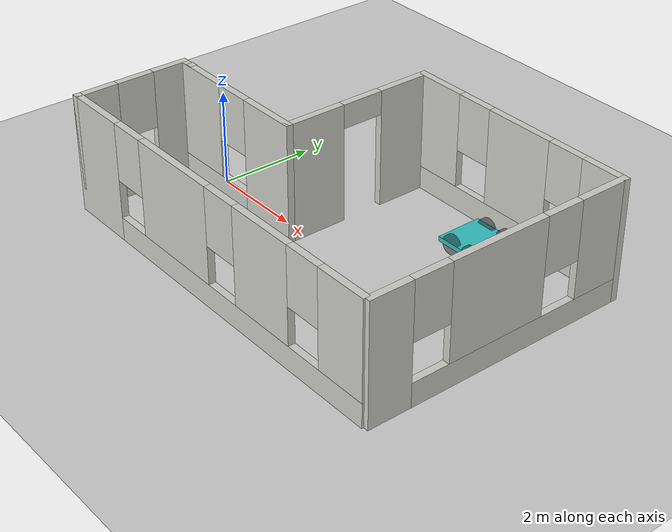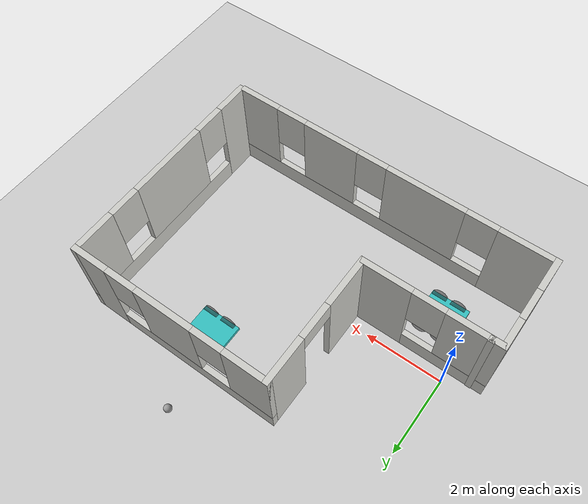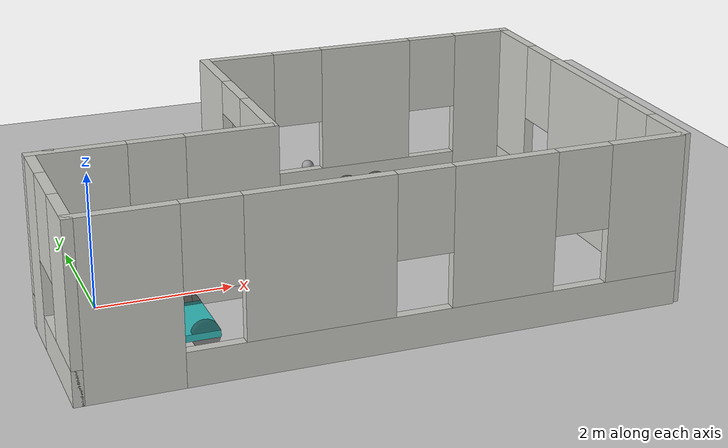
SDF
<sdf version="1.6">
 <world name="default">
  <plugin name="welcome" filename="libwelcome.so"/>
  <light name="sun" type="directional">
   <pose>0 0 10 0 -0 0</pose>
   <diffuse>0.8 0.8 0.8 1</diffuse>
   <specular>0.2 0.2 0.2 1</specular>
   <attenuation>
    <range>1000</range>
    <constant>0.9</constant>
    <linear>0.01</linear>
    <quadratic>0.001</quadratic>
   </attenuation>
   <direction>-0.5 0.1 -0.9</direction>
  </light>
  <model name="ground_plane">
   <static>1</static>
   <link name="link">
    <collision name="collision">
     <geometry><plane><normal>0 0 1</normal><size>100 100</size></plane></geometry>
     <surface>
      <contact><collide_bitmask>65535</collide_bitmask></contact>
      <friction><ode><mu>100</mu><mu2>50</mu2></ode></friction>
     </surface>
    </collision>
    <visual name="visual">
     <cast_shadows>0</cast_shadows>
     <geometry><plane><normal>0 0 1</normal><size>100 100</size></plane></geometry>
     <material>
      <script><uri>file://media/materials/scripts/gazebo.material</uri><name>Gazebo/Grey</name></script>
     </material>
    </visual>
   </link>
  </model>
  <gravity>0 0 -9.8</gravity>
  <magnetic_field>6e-06 2.3e-05 -4.2e-05</magnetic_field>
  <atmosphere type="adiabatic"/>
  <physics name="default_physics" default="0" type="ode">
   <max_step_size>0.001</max_step_size>
   <real_time_factor>1</real_time_factor>
   <real_time_update_rate>1000</real_time_update_rate>
  </physics>
  <scene><ambient>0.4 0.4 0.4 1</ambient><background>0.7 0.7 0.7 1</background><shadows>1</shadows></scene>
  <spherical_coordinates>
   <surface_model>EARTH_WGS84</surface_model>
   <latitude_deg>0</latitude_deg>
   <longitude_deg>0</longitude_deg>
   <elevation>0</elevation>
   <heading_deg>0</heading_deg>
  </spherical_coordinates>
  <model name="building">
   <pose>3.41165 0.120044 0 0 -0 0</pose>
   <link name="Wall_14">
    <pose>4.225 0.019583 0 0 -0 1.5708</pose>
    <visual name="Wall_14_Visual_0">
     <pose>-2.42247 0 1.25 0 -0 0</pose>
     <geometry><box><size>0.905067 0.15 2.5</size></box></geometry>
     <material>
      <script><uri>file://media/materials/scripts/gazebo.material</uri><name>Gazebo/CeilingTiled</name></script>
      <ambient>1 0.521569 0.65098 1</ambient>
     </material>
     <meta><layer>0</layer></meta>
    </visual>
    <collision name="Wall_14_Collision_0">
     <geometry><box><size>0.905067 0.15 2.5</size></box></geometry>
     <pose>-2.42247 0 1.25 0 -0 0</pose>
    </collision>
    <visual name="Wall_14_Visual_1">
     <pose>0.452533 0 0.25 0 -0 0</pose>
     <geometry><box><size>4.84493 0.15 0.5</size></box></geometry>
     <material>
      <script><uri>file://media/materials/scripts/gazebo.material</uri><name>Gazebo/CeilingTiled</name></script>
      <ambient>1 0.521569 0.65098 1</ambient>
     </material>
     <meta><layer>0</layer></meta>
    </visual>
    <collision name="Wall_14_Collision_1">
     <geometry><box><size>4.84493 0.15 0.5</size></box></geometry>
     <pose>0.452533 0 0.25 0 -0 0</pose>
    </collision>
    <visual name="Wall_14_Visual_2">
     <pose>-0.120222 0 1.5 0 -0 0</pose>
     <geometry><box><size>2.09942 0.15 2</size></box></geometry>
     <material>
      <script><uri>file://media/materials/scripts/gazebo.material</uri><name>Gazebo/CeilingTiled</name></script>
      <ambient>1 0.521569 0.65098 1</ambient>
     </material>
     <meta><layer>0</layer></meta>
    </visual>
    <collision name="Wall_14_Collision_2">
     <geometry><box><size>2.09942 0.15 2</size></box></geometry>
     <pose>-0.120222 0 1.5 0 -0 0</pose>
    </collision>
    <visual name="Wall_14_Visual_3">
     <pose>2.30224 0 1.5 0 -0 0</pose>
     <geometry><box><size>1.14551 0.15 2</size></box></geometry>
     <material>
      <script><uri>file://media/materials/scripts/gazebo.material</uri><name>Gazebo/CeilingTiled</name></script>
      <ambient>1 0.521569 0.65098 1</ambient>
     </material>
     <meta><layer>0</layer></meta>
    </visual>
    <collision name="Wall_14_Collision_3">
     <geometry><box><size>1.14551 0.15 2</size></box></geometry>
     <pose>2.30224 0 1.5 0 -0 0</pose>
    </collision>
    <visual name="Wall_14_Visual_4">
     <pose>-1.56993 0 1.9 0 -0 0</pose>
     <geometry><box><size>0.8 0.15 1.2</size></box></geometry>
     <material>
      <script><uri>file://media/materials/scripts/gazebo.material</uri><name>Gazebo/CeilingTiled</name></script>
      <ambient>1 0.521569 0.65098 1</ambient>
     </material>
     <meta><layer>0</layer></meta>
    </visual>
    <collision name="Wall_14_Collision_4">
     <geometry><box><size>0.8 0.15 1.2</size></box></geometry>
     <pose>-1.56993 0 1.9 0 -0 0</pose>
    </collision>
    <visual name="Wall_14_Visual_5">
     <pose>1.32949 0 1.9 0 -0 0</pose>
     <geometry><box><size>0.8 0.15 1.2</size></box></geometry>
     <material>
      <script><uri>file://media/materials/scripts/gazebo.material</uri><name>Gazebo/CeilingTiled</name></script>
      <ambient>1 0.521569 0.65098 1</ambient>
     </material>
     <meta><layer>0</layer></meta>
    </visual>
    <collision name="Wall_14_Collision_5">
     <geometry><box><size>0.8 0.15 1.2</size></box></geometry>
     <pose>1.32949 0 1.9 0 -0 0</pose>
    </collision>
   </link>
   <link name="Wall_15">
    <pose>1.675 2.81958 0 0 -0 3.14159</pose>
    <visual name="Wall_15_Visual_0">
     <pose>-2.13883 0 1.25 0 -0 0</pose>
     <geometry><box><size>0.972331 0.15 2.5</size></box></geometry>
     <material>
      <script><uri>file://media/materials/scripts/gazebo.material</uri><name>Gazebo/CeilingTiled</name></script>
      <ambient>1 0.521569 0.65098 1</ambient>
     </material>
     <meta><layer>0</layer></meta>
    </visual>
    <collision name="Wall_15_Collision_0">
     <geometry><box><size>0.972331 0.15 2.5</size></box></geometry>
     <pose>-2.13883 0 1.25 0 -0 0</pose>
    </collision>
    <visual name="Wall_15_Visual_1">
     <pose>0.486165 0 0.25 0 -0 0</pose>
     <geometry><box><size>4.27767 0.15 0.5</size></box></geometry>
     <material>
      <script><uri>file://media/materials/scripts/gazebo.material</uri><name>Gazebo/CeilingTiled</name></script>
      <ambient>1 0.521569 0.65098 1</ambient>
     </material>
     <meta><layer>0</layer></meta>
    </visual>
    <collision name="Wall_15_Collision_1">
     <geometry><box><size>4.27767 0.15 0.5</size></box></geometry>
     <pose>0.486165 0 0.25 0 -0 0</pose>
    </collision>
    <visual name="Wall_15_Visual_2">
     <pose>-0.095561 0 1.5 0 -0 0</pose>
     <geometry><box><size>1.51422 0.15 2</size></box></geometry>
     <material>
      <script><uri>file://media/materials/scripts/gazebo.material</uri><name>Gazebo/CeilingTiled</name></script>
      <ambient>1 0.521569 0.65098 1</ambient>
     </material>
     <meta><layer>0</layer></meta>
    </visual>
    <collision name="Wall_15_Collision_2">
     <geometry><box><size>1.51422 0.15 2</size></box></geometry>
     <pose>-0.095561 0 1.5 0 -0 0</pose>
    </collision>
    <visual name="Wall_15_Visual_3">
     <pose>2.04327 0 1.5 0 -0 0</pose>
     <geometry><box><size>1.16345 0.15 2</size></box></geometry>
     <material>
      <script><uri>file://media/materials/scripts/gazebo.material</uri><name>Gazebo/CeilingTiled</name></script>
      <ambient>1 0.521569 0.65098 1</ambient>
     </material>
     <meta><layer>0</layer></meta>
    </visual>
    <collision name="Wall_15_Collision_3">
     <geometry><box><size>1.16345 0.15 2</size></box></geometry>
     <pose>2.04327 0 1.5 0 -0 0</pose>
    </collision>
    <visual name="Wall_15_Visual_4">
     <pose>-1.25267 0 1.9 0 -0 0</pose>
     <geometry><box><size>0.8 0.15 1.2</size></box></geometry>
     <material>
      <script><uri>file://media/materials/scripts/gazebo.material</uri><name>Gazebo/CeilingTiled</name></script>
      <ambient>1 0.521569 0.65098 1</ambient>
     </material>
     <meta><layer>0</layer></meta>
    </visual>
    <collision name="Wall_15_Collision_4">
     <geometry><box><size>0.8 0.15 1.2</size></box></geometry>
     <pose>-1.25267 0 1.9 0 -0 0</pose>
    </collision>
    <visual name="Wall_15_Visual_5">
     <pose>1.06155 0 1.9 0 -0 0</pose>
     <geometry><box><size>0.8 0.15 1.2</size></box></geometry>
     <material>
      <script><uri>file://media/materials/scripts/gazebo.material</uri><name>Gazebo/CeilingTiled</name></script>
      <ambient>1 0.521569 0.65098 1</ambient>
     </material>
     <meta><layer>0</layer></meta>
    </visual>
    <collision name="Wall_15_Collision_5">
     <geometry><box><size>0.8 0.15 1.2</size></box></geometry>
     <pose>1.06155 0 1.9 0 -0 0</pose>
    </collision>
   </link>
   <link name="Wall_16">
    <pose>-0.875001 1.175 0 0 0 -1.5708</pose>
    <visual name="Wall_16_Visual_0">
     <pose>-1.11863 0 1.25 0 -0 0</pose>
     <geometry><box><size>1.20191 0.15 2.5</size></box></geometry>
     <material>
      <script><uri>file://media/materials/scripts/gazebo.material</uri><name>Gazebo/CeilingTiled</name></script>
      <ambient>1 0.521569 0.65098 1</ambient>
     </material>
     <meta><layer>0</layer></meta>
    </visual>
    <collision name="Wall_16_Collision_0">
     <geometry><box><size>1.20191 0.15 2.5</size></box></geometry>
     <pose>-1.11863 0 1.25 0 -0 0</pose>
    </collision>
    <visual name="Wall_16_Visual_1">
     <pose>1.05096 0 1.25 0 -0 0</pose>
     <geometry><box><size>1.33725 0.15 2.5</size></box></geometry>
     <material>
      <script><uri>file://media/materials/scripts/gazebo.material</uri><name>Gazebo/CeilingTiled</name></script>
      <ambient>1 0.521569 0.65098 1</ambient>
     </material>
     <meta><layer>0</layer></meta>
    </visual>
    <collision name="Wall_16_Collision_1">
     <geometry><box><size>1.33725 0.15 2.5</size></box></geometry>
     <pose>1.05096 0 1.25 0 -0 0</pose>
    </collision>
    <visual name="Wall_16_Visual_2">
     <pose>-0.06767 0 2.25 0 -0 0</pose>
     <geometry><box><size>0.9 0.15 0.5</size></box></geometry>
     <material>
      <script><uri>file://media/materials/scripts/gazebo.material</uri><name>Gazebo/CeilingTiled</name></script>
      <ambient>1 0.521569 0.65098 1</ambient>
     </material>
     <meta><layer>0</layer></meta>
    </visual>
    <collision name="Wall_16_Collision_2">
     <geometry><box><size>0.9 0.15 0.5</size></box></geometry>
     <pose>-0.06767 0 2.25 0 -0 0</pose>
    </collision>
   </link>
   <link name="Wall_19">
    <collision name="Wall_19_Collision">
     <geometry><box><size>0.15 0.15 2.5</size></box></geometry>
     <pose>0 0 1.25 0 -0 0</pose>
    </collision>
    <visual name="Wall_19_Visual">
     <pose>0 0 1.25 0 -0 0</pose>
     <geometry><box><size>0.15 0.15 2.5</size></box></geometry>
     <material>
      <script><uri>file://media/materials/scripts/gazebo.material</uri><name>Gazebo/CeilingTiled</name></script>
      <ambient>1 0.521569 0.65098 1</ambient>
     </material>
     <meta><layer>0</layer></meta>
    </visual>
    <pose>-3.96029 -0.454868 0 0 -0 0</pose>
   </link>
   <link name="Wall_26">
    <pose>-2.55 -0.469583 0 0 -0 3.14159</pose>
    <visual name="Wall_26_Visual_0">
     <pose>-1.08731 0 1.25 0 -0 0</pose>
     <geometry><box><size>1.32537 0.15 2.5</size></box></geometry>
     <material>
      <script><uri>file://media/materials/scripts/gazebo.material</uri><name>Gazebo/CeilingTiled</name></script>
      <ambient>1 0.521569 0.65098 1</ambient>
     </material>
     <meta><layer>0</layer></meta>
    </visual>
    <collision name="Wall_26_Collision_0">
     <geometry><box><size>1.32537 0.15 2.5</size></box></geometry>
     <pose>-1.08731 0 1.25 0 -0 0</pose>
    </collision>
    <visual name="Wall_26_Visual_1">
     <pose>0.662686 0 0.25 0 -0 0</pose>
     <geometry><box><size>2.17463 0.15 0.5</size></box></geometry>
     <material>
      <script><uri>file://media/materials/scripts/gazebo.material</uri><name>Gazebo/CeilingTiled</name></script>
      <ambient>1 0.521569 0.65098 1</ambient>
     </material>
     <meta><layer>0</layer></meta>
    </visual>
    <collision name="Wall_26_Collision_1">
     <geometry><box><size>2.17463 0.15 0.5</size></box></geometry>
     <pose>0.662686 0 0.25 0 -0 0</pose>
    </collision>
    <visual name="Wall_26_Visual_2">
     <pose>1.06269 0 1.5 0 -0 0</pose>
     <geometry><box><size>1.37463 0.15 2</size></box></geometry>
     <material>
      <script><uri>file://media/materials/scripts/gazebo.material</uri><name>Gazebo/CeilingTiled</name></script>
      <ambient>1 0.521569 0.65098 1</ambient>
     </material>
     <meta><layer>0</layer></meta>
    </visual>
    <collision name="Wall_26_Collision_2">
     <geometry><box><size>1.37463 0.15 2</size></box></geometry>
     <pose>1.06269 0 1.5 0 -0 0</pose>
    </collision>
    <visual name="Wall_26_Visual_3">
     <pose>-0.024629 0 1.9 0 -0 0</pose>
     <geometry><box><size>0.8 0.15 1.2</size></box></geometry>
     <material>
      <script><uri>file://media/materials/scripts/gazebo.material</uri><name>Gazebo/CeilingTiled</name></script>
      <ambient>1 0.521569 0.65098 1</ambient>
     </material>
     <meta><layer>0</layer></meta>
    </visual>
    <collision name="Wall_26_Collision_3">
     <geometry><box><size>0.8 0.15 1.2</size></box></geometry>
     <pose>-0.024629 0 1.9 0 -0 0</pose>
    </collision>
   </link>
   <link name="Wall_27">
    <pose>-4.225 -1.64458 0 0 0 -1.5708</pose>
    <visual name="Wall_27_Visual_0">
     <pose>-0.845516 0 1.25 0 -0 0</pose>
     <geometry><box><size>0.808968 0.15 2.5</size></box></geometry>
     <material>
      <script><uri>file://media/materials/scripts/gazebo.material</uri><name>Gazebo/CeilingTiled</name></script>
      <ambient>1 0.521569 0.65098 1</ambient>
     </material>
     <meta><layer>0</layer></meta>
    </visual>
    <collision name="Wall_27_Collision_0">
     <geometry><box><size>0.808968 0.15 2.5</size></box></geometry>
     <pose>-0.845516 0 1.25 0 -0 0</pose>
    </collision>
    <visual name="Wall_27_Visual_1">
     <pose>0.404484 0 0.25 0 -0 0</pose>
     <geometry><box><size>1.69103 0.15 0.5</size></box></geometry>
     <material>
      <script><uri>file://media/materials/scripts/gazebo.material</uri><name>Gazebo/CeilingTiled</name></script>
      <ambient>1 0.521569 0.65098 1</ambient>
     </material>
     <meta><layer>0</layer></meta>
    </visual>
    <collision name="Wall_27_Collision_1">
     <geometry><box><size>1.69103 0.15 0.5</size></box></geometry>
     <pose>0.404484 0 0.25 0 -0 0</pose>
    </collision>
    <visual name="Wall_27_Visual_2">
     <pose>0.804484 0 1.5 0 -0 0</pose>
     <geometry><box><size>0.891032 0.15 2</size></box></geometry>
     <material>
      <script><uri>file://media/materials/scripts/gazebo.material</uri><name>Gazebo/CeilingTiled</name></script>
      <ambient>1 0.521569 0.65098 1</ambient>
     </material>
     <meta><layer>0</layer></meta>
    </visual>
    <collision name="Wall_27_Collision_2">
     <geometry><box><size>0.891032 0.15 2</size></box></geometry>
     <pose>0.804484 0 1.5 0 -0 0</pose>
    </collision>
    <visual name="Wall_27_Visual_3">
     <pose>-0.041032 0 1.9 0 -0 0</pose>
     <geometry><box><size>0.8 0.15 1.2</size></box></geometry>
     <material>
      <script><uri>file://media/materials/scripts/gazebo.material</uri><name>Gazebo/CeilingTiled</name></script>
      <ambient>1 0.521569 0.65098 1</ambient>
      <ambient>1 1 1 1</ambient>
     </material>
     <meta><layer>0</layer></meta>
    </visual>
    <collision name="Wall_27_Collision_3">
     <geometry><box><size>0.8 0.15 1.2</size></box></geometry>
     <pose>-0.041032 0 1.9 0 -0 0</pose>
    </collision>
   </link>
   <link name="Wall_28">
    <pose>-0.05 -2.81958 0 0 -0 0</pose>
    <visual name="Wall_28_Visual_0">
     <pose>-3.52278 0 1.25 0 -0 0</pose>
     <geometry><box><size>1.45443 0.15 2.5</size></box></geometry>
     <material>
      <script><uri>file://media/materials/scripts/gazebo.material</uri><name>Gazebo/CeilingTiled</name></script>
      <ambient>1 0.521569 0.65098 1</ambient>
     </material>
     <meta><layer>0</layer></meta>
    </visual>
    <collision name="Wall_28_Collision_0">
     <geometry><box><size>1.45443 0.15 2.5</size></box></geometry>
     <pose>-3.52278 0 1.25 0 -0 0</pose>
    </collision>
    <visual name="Wall_28_Visual_1">
     <pose>0.727215 0 0.25 0 -0 0</pose>
     <geometry><box><size>7.04557 0.15 0.5</size></box></geometry>
     <material>
      <script><uri>file://media/materials/scripts/gazebo.material</uri><name>Gazebo/CeilingTiled</name></script>
      <ambient>1 0.521569 0.65098 1</ambient>
     </material>
     <meta><layer>0</layer></meta>
    </visual>
    <collision name="Wall_28_Collision_1">
     <geometry><box><size>7.04557 0.15 0.5</size></box></geometry>
     <pose>0.727215 0 0.25 0 -0 0</pose>
    </collision>
    <visual name="Wall_28_Visual_2">
     <pose>-0.97246 0 1.5 0 -0 0</pose>
     <geometry><box><size>2.04622 0.15 2</size></box></geometry>
     <material>
      <script><uri>file://media/materials/scripts/gazebo.material</uri><name>Gazebo/CeilingTiled</name></script>
      <ambient>1 0.521569 0.65098 1</ambient>
     </material>
     <meta><layer>0</layer></meta>
    </visual>
    <collision name="Wall_28_Collision_2">
     <geometry><box><size>2.04622 0.15 2</size></box></geometry>
     <pose>-0.97246 0 1.5 0 -0 0</pose>
    </collision>
    <visual name="Wall_28_Visual_3">
     <pose>1.59446 0 1.5 0 -0 0</pose>
     <geometry><box><size>1.48762 0.15 2</size></box></geometry>
     <material>
      <script><uri>file://media/materials/scripts/gazebo.material</uri><name>Gazebo/CeilingTiled</name></script>
      <ambient>1 0.521569 0.65098 1</ambient>
     </material>
     <meta><layer>0</layer></meta>
    </visual>
    <collision name="Wall_28_Collision_3">
     <geometry><box><size>1.48762 0.15 2</size></box></geometry>
     <pose>1.59446 0 1.5 0 -0 0</pose>
    </collision>
    <visual name="Wall_28_Visual_4">
     <pose>3.69413 0 1.5 0 -0 0</pose>
     <geometry><box><size>1.11173 0.15 2</size></box></geometry>
     <material>
      <script><uri>file://media/materials/scripts/gazebo.material</uri><name>Gazebo/CeilingTiled</name></script>
      <ambient>1 0.521569 0.65098 1</ambient>
     </material>
     <meta><layer>0</layer></meta>
    </visual>
    <collision name="Wall_28_Collision_4">
     <geometry><box><size>1.11173 0.15 2</size></box></geometry>
     <pose>3.69413 0 1.5 0 -0 0</pose>
    </collision>
    <visual name="Wall_28_Visual_5">
     <pose>-2.39557 0 1.9 0 -0 0</pose>
     <geometry><box><size>0.8 0.15 1.2</size></box></geometry>
     <material>
      <script><uri>file://media/materials/scripts/gazebo.material</uri><name>Gazebo/CeilingTiled</name></script>
      <ambient>1 0.521569 0.65098 1</ambient>
     </material>
     <meta><layer>0</layer></meta>
    </visual>
    <collision name="Wall_28_Collision_5">
     <geometry><box><size>0.8 0.15 1.2</size></box></geometry>
     <pose>-2.39557 0 1.9 0 -0 0</pose>
    </collision>
    <visual name="Wall_28_Visual_6">
     <pose>0.45065 0 1.9 0 -0 0</pose>
     <geometry><box><size>0.8 0.15 1.2</size></box></geometry>
     <material>
      <script><uri>file://media/materials/scripts/gazebo.material</uri><name>Gazebo/CeilingTiled</name></script>
      <ambient>1 0.521569 0.65098 1</ambient>
     </material>
     <meta><layer>0</layer></meta>
    </visual>
    <collision name="Wall_28_Collision_6">
     <geometry><box><size>0.8 0.15 1.2</size></box></geometry>
     <pose>0.45065 0 1.9 0 -0 0</pose>
    </collision>
    <visual name="Wall_28_Visual_7">
     <pose>2.73827 0 1.9 0 -0 0</pose>
     <geometry><box><size>0.8 0.15 1.2</size></box></geometry>
     <material>
      <script><uri>file://media/materials/scripts/gazebo.material</uri><name>Gazebo/CeilingTiled</name></script>
      <ambient>1 0.521569 0.65098 1</ambient>
     </material>
     <meta><layer>0</layer></meta>
    </visual>
    <collision name="Wall_28_Collision_7">
     <geometry><box><size>0.8 0.15 1.2</size></box></geometry>
     <pose>2.73827 0 1.9 0 -0 0</pose>
    </collision>
   </link>
   <static>1</static>
  </model>
  <model name="four_wheels_0">
   <link name="link_0">
    <pose>-0.04 0 0 0 -0 0</pose>
    <inertial>
     <mass>1</mass>
     <inertia>
      <ixx>0.166667</ixx>
      <ixy>0</ixy>
      <ixz>0</ixz>
      <iyy>0.166667</iyy>
      <iyz>0</iyz>
      <izz>0.166667</izz>
     </inertia>
    </inertial>
    <visual name="visual">
     <geometry><box><size>1 1 0.1</size></box></geometry>
     <material>
      <script><uri>file://media/materials/scripts/gazebo.material</uri><name>Gazebo/TurquoiseGlow</name></script>
     </material>
    </visual>
    <collision name="collision">
     <geometry><box><size>1 1 0.1</size></box></geometry>
     <surface>
      <friction>
       <ode><mu>1</mu><mu2>1</mu2><fdir1>0 0 0</fdir1><slip1>0</slip1><slip2>0</slip2></ode>
       <torsional>
        <coefficient>1</coefficient>
        <patch_radius>0</patch_radius>
        <surface_radius>0</surface_radius>
        <use_patch_radius>1</use_patch_radius>
        <ode><slip>0</slip></ode>
       </torsional>
      </friction>
      <bounce><restitution_coefficient>0</restitution_coefficient><threshold>1e+06</threshold></bounce>
      <contact>
       <collide_without_contact>0</collide_without_contact>
       <collide_without_contact_bitmask>1</collide_without_contact_bitmask>
       <collide_bitmask>1</collide_bitmask>
       <ode>
        <soft_cfm>0</soft_cfm>
        <soft_erp>0.2</soft_erp>
        <kp>1e+13</kp>
        <kd>1</kd>
        <max_vel>0.01</max_vel>
        <min_depth>0</min_depth>
       </ode>
       <bullet>
        <split_impulse>1</split_impulse>
        <split_impulse_penetration_threshold>-0.01</split_impulse_penetration_threshold>
        <soft_cfm>0</soft_cfm>
        <soft_erp>0.2</soft_erp>
        <kp>1e+13</kp>
        <kd>1</kd>
       </bullet>
      </contact>
     </surface>
    </collision>
   </link>
   <link name="link_1">
    <pose>-0.24 0.44998 0 1.5707 -0 0</pose>
    <inertial>
     <mass>1</mass>
     <inertia><ixx>0.145833</ixx><ixy>0</ixy><ixz>0</ixz><iyy>0.145833</iyy><iyz>0</iyz><izz>0.125</izz></inertia>
    </inertial>
    <visual name="visual">
     <geometry><cylinder><radius>0.2</radius><length>0.1</length></cylinder></geometry>
     <material>
      <script><uri>file://media/materials/scripts/gazebo.material</uri><name>Gazebo/BlackTransparent</name></script>
     </material>
    </visual>
    <collision name="collision">
     <geometry><cylinder><radius>0.2</radius><length>0.1</length></cylinder></geometry>
     <surface>
      <friction>
       <ode><mu>1</mu><mu2>1</mu2><fdir1>0 0 0</fdir1><slip1>0</slip1><slip2>0</slip2></ode>
       <torsional>
        <coefficient>1</coefficient>
        <patch_radius>0</patch_radius>
        <surface_radius>0</surface_radius>
        <use_patch_radius>1</use_patch_radius>
        <ode><slip>0</slip></ode>
       </torsional>
      </friction>
      <bounce><restitution_coefficient>0</restitution_coefficient><threshold>1e+06</threshold></bounce>
      <contact>
       <collide_without_contact>0</collide_without_contact>
       <collide_without_contact_bitmask>1</collide_without_contact_bitmask>
       <collide_bitmask>1</collide_bitmask>
       <ode>
        <soft_cfm>0</soft_cfm>
        <soft_erp>0.2</soft_erp>
        <kp>1e+13</kp>
        <kd>1</kd>
        <max_vel>0.01</max_vel>
        <min_depth>0</min_depth>
       </ode>
       <bullet>
        <split_impulse>1</split_impulse>
        <split_impulse_penetration_threshold>-0.01</split_impulse_penetration_threshold>
        <soft_cfm>0</soft_cfm>
        <soft_erp>0.2</soft_erp>
        <kp>1e+13</kp>
        <kd>1</kd>
       </bullet>
      </contact>
     </surface>
    </collision>
   </link>
   <link name="link_1_clone">
    <pose>-0.24 -0.449981 0 1.5707 -0 0</pose>
    <inertial>
     <mass>1</mass>
     <inertia><ixx>0.145833</ixx><ixy>0</ixy><ixz>0</ixz><iyy>0.145833</iyy><iyz>0</iyz><izz>0.125</izz></inertia>
    </inertial>
    <visual name="visual">
     <geometry><cylinder><radius>0.2</radius><length>0.1</length></cylinder></geometry>
     <material>
      <script><uri>file://media/materials/scripts/gazebo.material</uri><name>Gazebo/BlackTransparent</name></script>
     </material>
    </visual>
    <collision name="collision">
     <geometry><cylinder><radius>0.2</radius><length>0.1</length></cylinder></geometry>
     <surface>
      <friction>
       <ode><mu>1</mu><mu2>1</mu2><fdir1>0 0 0</fdir1><slip1>0</slip1><slip2>0</slip2></ode>
       <torsional>
        <coefficient>1</coefficient>
        <patch_radius>0</patch_radius>
        <surface_radius>0</surface_radius>
        <use_patch_radius>1</use_patch_radius>
        <ode><slip>0</slip></ode>
       </torsional>
      </friction>
      <bounce><restitution_coefficient>0</restitution_coefficient><threshold>1e+06</threshold></bounce>
      <contact>
       <collide_without_contact>0</collide_without_contact>
       <collide_without_contact_bitmask>1</collide_without_contact_bitmask>
       <collide_bitmask>1</collide_bitmask>
       <ode>
        <soft_cfm>0</soft_cfm>
        <soft_erp>0.2</soft_erp>
        <kp>1e+13</kp>
        <kd>1</kd>
        <max_vel>0.01</max_vel>
        <min_depth>0</min_depth>
       </ode>
       <bullet>
        <split_impulse>1</split_impulse>
        <split_impulse_penetration_threshold>-0.01</split_impulse_penetration_threshold>
        <soft_cfm>0</soft_cfm>
        <soft_erp>0.2</soft_erp>
        <kp>1e+13</kp>
        <kd>1</kd>
       </bullet>
      </contact>
     </surface>
    </collision>
   </link>
   <link name="link_1_clone_0">
    <pose>0.26 0.449981 0 1.5707 -0 0</pose>
    <inertial>
     <mass>1</mass>
     <inertia><ixx>0.145833</ixx><ixy>0</ixy><ixz>0</ixz><iyy>0.145833</iyy><iyz>0</iyz><izz>0.125</izz></inertia>
    </inertial>
    <visual name="visual">
     <geometry><cylinder><radius>0.2</radius><length>0.1</length></cylinder></geometry>
     <material>
      <script><uri>file://media/materials/scripts/gazebo.material</uri><name>Gazebo/BlackTransparent</name></script>
     </material>
    </visual>
    <collision name="collision">
     <geometry><cylinder><radius>0.2</radius><length>0.1</length></cylinder></geometry>
     <surface>
      <friction>
       <ode><mu>1</mu><mu2>1</mu2><fdir1>0 0 0</fdir1><slip1>0</slip1><slip2>0</slip2></ode>
       <torsional>
        <coefficient>1</coefficient>
        <patch_radius>0</patch_radius>
        <surface_radius>0</surface_radius>
        <use_patch_radius>1</use_patch_radius>
        <ode><slip>0</slip></ode>
       </torsional>
      </friction>
      <bounce><restitution_coefficient>0</restitution_coefficient><threshold>1e+06</threshold></bounce>
      <contact>
       <collide_without_contact>0</collide_without_contact>
       <collide_without_contact_bitmask>1</collide_without_contact_bitmask>
       <collide_bitmask>1</collide_bitmask>
       <ode>
        <soft_cfm>0</soft_cfm>
        <soft_erp>0.2</soft_erp>
        <kp>1e+13</kp>
        <kd>1</kd>
        <max_vel>0.01</max_vel>
        <min_depth>0</min_depth>
       </ode>
       <bullet>
        <split_impulse>1</split_impulse>
        <split_impulse_penetration_threshold>-0.01</split_impulse_penetration_threshold>
        <soft_cfm>0</soft_cfm>
        <soft_erp>0.2</soft_erp>
        <kp>1e+13</kp>
        <kd>1</kd>
       </bullet>
      </contact>
     </surface>
    </collision>
   </link>
   <link name="link_1_clone_clone">
    <pose>0.26 -0.449981 0 1.5707 -0 0</pose>
    <inertial>
     <mass>1</mass>
     <inertia><ixx>0.145833</ixx><ixy>0</ixy><ixz>0</ixz><iyy>0.145833</iyy><iyz>0</iyz><izz>0.125</izz></inertia>
    </inertial>
    <visual name="visual">
     <geometry><cylinder><radius>0.2</radius><length>0.1</length></cylinder></geometry>
     <material>
      <script><uri>file://media/materials/scripts/gazebo.material</uri><name>Gazebo/BlackTransparent</name></script>
     </material>
    </visual>
    <collision name="collision">
     <geometry><cylinder><radius>0.2</radius><length>0.1</length></cylinder></geometry>
     <surface>
      <friction>
       <ode><mu>1</mu><mu2>1</mu2><fdir1>0 0 0</fdir1><slip1>0</slip1><slip2>0</slip2></ode>
       <torsional>
        <coefficient>1</coefficient>
        <patch_radius>0</patch_radius>
        <surface_radius>0</surface_radius>
        <use_patch_radius>1</use_patch_radius>
        <ode><slip>0</slip></ode>
       </torsional>
      </friction>
      <bounce><restitution_coefficient>0</restitution_coefficient><threshold>1e+06</threshold></bounce>
      <contact>
       <collide_without_contact>0</collide_without_contact>
       <collide_without_contact_bitmask>1</collide_without_contact_bitmask>
       <collide_bitmask>1</collide_bitmask>
       <ode>
        <soft_cfm>0</soft_cfm>
        <soft_erp>0.2</soft_erp>
        <kp>1e+13</kp>
        <kd>1</kd>
        <max_vel>0.01</max_vel>
        <min_depth>0</min_depth>
       </ode>
       <bullet>
        <split_impulse>1</split_impulse>
        <split_impulse_penetration_threshold>-0.01</split_impulse_penetration_threshold>
        <soft_cfm>0</soft_cfm>
        <soft_erp>0.2</soft_erp>
        <kp>1e+13</kp>
        <kd>1</kd>
       </bullet>
      </contact>
     </surface>
    </collision>
   </link>
   <joint name="link_0_JOINT_0" type="revolute">
    <parent>link_0</parent>
    <child>link_1</child>
    <axis>
     <xyz>1 0 0</xyz>
     <use_parent_model_frame>0</use_parent_model_frame>
     <limit>
      <lower>-1.79769e+308</lower>
      <upper>1.79769e+308</upper>
      <effort>-1</effort>
      <velocity>-1</velocity>
     </limit>
     <dynamics>
      <spring_reference>0</spring_reference>
      <spring_stiffness>0</spring_stiffness>
      <damping>0</damping>
     </dynamics>
    </axis>
    <physics>
     <ode><limit><cfm>0</cfm><erp>0.2</erp></limit><suspension><cfm>0</cfm><erp>0.2</erp></suspension></ode>
    </physics>
   </joint>
   <joint name="link_0_JOINT_1" type="revolute">
    <parent>link_0</parent>
    <child>link_1_clone</child>
    <axis>
     <xyz>1 0 0</xyz>
     <use_parent_model_frame>0</use_parent_model_frame>
     <limit>
      <lower>-1.79769e+308</lower>
      <upper>1.79769e+308</upper>
      <effort>-1</effort>
      <velocity>-1</velocity>
     </limit>
     <dynamics>
      <spring_reference>0</spring_reference>
      <spring_stiffness>0</spring_stiffness>
      <damping>0</damping>
     </dynamics>
    </axis>
    <physics>
     <ode><limit><cfm>0</cfm><erp>0.2</erp></limit><suspension><cfm>0</cfm><erp>0.2</erp></suspension></ode>
    </physics>
   </joint>
   <joint name="link_0_JOINT_2" type="revolute">
    <parent>link_0</parent>
    <child>link_1_clone_0</child>
    <axis>
     <xyz>1 0 0</xyz>
     <use_parent_model_frame>0</use_parent_model_frame>
     <limit>
      <lower>-1.79769e+308</lower>
      <upper>1.79769e+308</upper>
      <effort>-1</effort>
      <velocity>-1</velocity>
     </limit>
     <dynamics>
      <spring_reference>0</spring_reference>
      <spring_stiffness>0</spring_stiffness>
      <damping>0</damping>
     </dynamics>
    </axis>
    <physics>
     <ode><limit><cfm>0</cfm><erp>0.2</erp></limit><suspension><cfm>0</cfm><erp>0.2</erp></suspension></ode>
    </physics>
   </joint>
   <joint name="link_0_JOINT_3" type="revolute">
    <parent>link_0</parent>
    <child>link_1_clone_clone</child>
    <axis>
     <xyz>1 0 0</xyz>
     <use_parent_model_frame>0</use_parent_model_frame>
     <limit>
      <lower>-1.79769e+308</lower>
      <upper>1.79769e+308</upper>
      <effort>-1</effort>
      <velocity>-1</velocity>
     </limit>
     <dynamics>
      <spring_reference>0</spring_reference>
      <spring_stiffness>0</spring_stiffness>
      <damping>0</damping>
     </dynamics>
    </axis>
    <physics>
     <ode><limit><cfm>0</cfm><erp>0.2</erp></limit><suspension><cfm>0</cfm><erp>0.2</erp></suspension></ode>
    </physics>
   </joint>
   <static>0</static>
   <pose>5.01236 2.18571 0.199996 9e-06 -0 0.0036</pose>
  </model>
  <model name="four_wheels">
   <link name="link_0">
    <pose>-0.04 0 0 0 -0 0</pose>
    <inertial>
     <mass>1</mass>
     <inertia>
      <ixx>0.166667</ixx>
      <ixy>0</ixy>
      <ixz>0</ixz>
      <iyy>0.166667</iyy>
      <iyz>0</iyz>
      <izz>0.166667</izz>
     </inertia>
    </inertial>
    <visual name="visual">
     <geometry><box><size>1 1 0.1</size></box></geometry>
     <material>
      <script><uri>file://media/materials/scripts/gazebo.material</uri><name>Gazebo/TurquoiseGlow</name></script>
     </material>
    </visual>
    <collision name="collision">
     <geometry><box><size>1 1 0.1</size></box></geometry>
     <surface>
      <friction>
       <ode><mu>1</mu><mu2>1</mu2><fdir1>0 0 0</fdir1><slip1>0</slip1><slip2>0</slip2></ode>
       <torsional>
        <coefficient>1</coefficient>
        <patch_radius>0</patch_radius>
        <surface_radius>0</surface_radius>
        <use_patch_radius>1</use_patch_radius>
        <ode><slip>0</slip></ode>
       </torsional>
      </friction>
      <bounce><restitution_coefficient>0</restitution_coefficient><threshold>1e+06</threshold></bounce>
      <contact>
       <collide_without_contact>0</collide_without_contact>
       <collide_without_contact_bitmask>1</collide_without_contact_bitmask>
       <collide_bitmask>1</collide_bitmask>
       <ode>
        <soft_cfm>0</soft_cfm>
        <soft_erp>0.2</soft_erp>
        <kp>1e+13</kp>
        <kd>1</kd>
        <max_vel>0.01</max_vel>
        <min_depth>0</min_depth>
       </ode>
       <bullet>
        <split_impulse>1</split_impulse>
        <split_impulse_penetration_threshold>-0.01</split_impulse_penetration_threshold>
        <soft_cfm>0</soft_cfm>
        <soft_erp>0.2</soft_erp>
        <kp>1e+13</kp>
        <kd>1</kd>
       </bullet>
      </contact>
     </surface>
    </collision>
   </link>
   <link name="link_1">
    <pose>-0.24 0.44998 0 1.5707 -0 0</pose>
    <inertial>
     <mass>1</mass>
     <inertia><ixx>0.145833</ixx><ixy>0</ixy><ixz>0</ixz><iyy>0.145833</iyy><iyz>0</iyz><izz>0.125</izz></inertia>
    </inertial>
    <visual name="visual">
     <geometry><cylinder><radius>0.2</radius><length>0.1</length></cylinder></geometry>
     <material>
      <script><uri>file://media/materials/scripts/gazebo.material</uri><name>Gazebo/BlackTransparent</name></script>
     </material>
    </visual>
    <collision name="collision">
     <geometry><cylinder><radius>0.2</radius><length>0.1</length></cylinder></geometry>
     <surface>
      <friction>
       <ode><mu>1</mu><mu2>1</mu2><fdir1>0 0 0</fdir1><slip1>0</slip1><slip2>0</slip2></ode>
       <torsional>
        <coefficient>1</coefficient>
        <patch_radius>0</patch_radius>
        <surface_radius>0</surface_radius>
        <use_patch_radius>1</use_patch_radius>
        <ode><slip>0</slip></ode>
       </torsional>
      </friction>
      <bounce><restitution_coefficient>0</restitution_coefficient><threshold>1e+06</threshold></bounce>
      <contact>
       <collide_without_contact>0</collide_without_contact>
       <collide_without_contact_bitmask>1</collide_without_contact_bitmask>
       <collide_bitmask>1</collide_bitmask>
       <ode>
        <soft_cfm>0</soft_cfm>
        <soft_erp>0.2</soft_erp>
        <kp>1e+13</kp>
        <kd>1</kd>
        <max_vel>0.01</max_vel>
        <min_depth>0</min_depth>
       </ode>
       <bullet>
        <split_impulse>1</split_impulse>
        <split_impulse_penetration_threshold>-0.01</split_impulse_penetration_threshold>
        <soft_cfm>0</soft_cfm>
        <soft_erp>0.2</soft_erp>
        <kp>1e+13</kp>
        <kd>1</kd>
       </bullet>
      </contact>
     </surface>
    </collision>
   </link>
   <link name="link_1_clone">
    <pose>-0.24 -0.449981 0 1.5707 -0 0</pose>
    <inertial>
     <mass>1</mass>
     <inertia><ixx>0.145833</ixx><ixy>0</ixy><ixz>0</ixz><iyy>0.145833</iyy><iyz>0</iyz><izz>0.125</izz></inertia>
    </inertial>
    <visual name="visual">
     <geometry><cylinder><radius>0.2</radius><length>0.1</length></cylinder></geometry>
     <material>
      <script><uri>file://media/materials/scripts/gazebo.material</uri><name>Gazebo/BlackTransparent</name></script>
     </material>
    </visual>
    <collision name="collision">
     <geometry><cylinder><radius>0.2</radius><length>0.1</length></cylinder></geometry>
     <surface>
      <friction>
       <ode><mu>1</mu><mu2>1</mu2><fdir1>0 0 0</fdir1><slip1>0</slip1><slip2>0</slip2></ode>
       <torsional>
        <coefficient>1</coefficient>
        <patch_radius>0</patch_radius>
        <surface_radius>0</surface_radius>
        <use_patch_radius>1</use_patch_radius>
        <ode><slip>0</slip></ode>
       </torsional>
      </friction>
      <bounce><restitution_coefficient>0</restitution_coefficient><threshold>1e+06</threshold></bounce>
      <contact>
       <collide_without_contact>0</collide_without_contact>
       <collide_without_contact_bitmask>1</collide_without_contact_bitmask>
       <collide_bitmask>1</collide_bitmask>
       <ode>
        <soft_cfm>0</soft_cfm>
        <soft_erp>0.2</soft_erp>
        <kp>1e+13</kp>
        <kd>1</kd>
        <max_vel>0.01</max_vel>
        <min_depth>0</min_depth>
       </ode>
       <bullet>
        <split_impulse>1</split_impulse>
        <split_impulse_penetration_threshold>-0.01</split_impulse_penetration_threshold>
        <soft_cfm>0</soft_cfm>
        <soft_erp>0.2</soft_erp>
        <kp>1e+13</kp>
        <kd>1</kd>
       </bullet>
      </contact>
     </surface>
    </collision>
   </link>
   <link name="link_1_clone_0">
    <pose>0.26 0.449981 0 1.5707 -0 0</pose>
    <inertial>
     <mass>1</mass>
     <inertia><ixx>0.145833</ixx><ixy>0</ixy><ixz>0</ixz><iyy>0.145833</iyy><iyz>0</iyz><izz>0.125</izz></inertia>
    </inertial>
    <visual name="visual">
     <geometry><cylinder><radius>0.2</radius><length>0.1</length></cylinder></geometry>
     <material>
      <script><uri>file://media/materials/scripts/gazebo.material</uri><name>Gazebo/BlackTransparent</name></script>
     </material>
    </visual>
    <collision name="collision">
     <geometry><cylinder><radius>0.2</radius><length>0.1</length></cylinder></geometry>
     <surface>
      <friction>
       <ode><mu>1</mu><mu2>1</mu2><fdir1>0 0 0</fdir1><slip1>0</slip1><slip2>0</slip2></ode>
       <torsional>
        <coefficient>1</coefficient>
        <patch_radius>0</patch_radius>
        <surface_radius>0</surface_radius>
        <use_patch_radius>1</use_patch_radius>
        <ode><slip>0</slip></ode>
       </torsional>
      </friction>
      <bounce><restitution_coefficient>0</restitution_coefficient><threshold>1e+06</threshold></bounce>
      <contact>
       <collide_without_contact>0</collide_without_contact>
       <collide_without_contact_bitmask>1</collide_without_contact_bitmask>
       <collide_bitmask>1</collide_bitmask>
       <ode>
        <soft_cfm>0</soft_cfm>
        <soft_erp>0.2</soft_erp>
        <kp>1e+13</kp>
        <kd>1</kd>
        <max_vel>0.01</max_vel>
        <min_depth>0</min_depth>
       </ode>
       <bullet>
        <split_impulse>1</split_impulse>
        <split_impulse_penetration_threshold>-0.01</split_impulse_penetration_threshold>
        <soft_cfm>0</soft_cfm>
        <soft_erp>0.2</soft_erp>
        <kp>1e+13</kp>
        <kd>1</kd>
       </bullet>
      </contact>
     </surface>
    </collision>
   </link>
   <link name="link_1_clone_clone">
    <pose>0.26 -0.449981 0 1.5707 -0 0</pose>
    <inertial>
     <mass>1</mass>
     <inertia><ixx>0.145833</ixx><ixy>0</ixy><ixz>0</ixz><iyy>0.145833</iyy><iyz>0</iyz><izz>0.125</izz></inertia>
    </inertial>
    <visual name="visual">
     <geometry><cylinder><radius>0.2</radius><length>0.1</length></cylinder></geometry>
     <material>
      <script><uri>file://media/materials/scripts/gazebo.material</uri><name>Gazebo/BlackTransparent</name></script>
     </material>
    </visual>
    <collision name="collision">
     <geometry><cylinder><radius>0.2</radius><length>0.1</length></cylinder></geometry>
     <surface>
      <friction>
       <ode><mu>1</mu><mu2>1</mu2><fdir1>0 0 0</fdir1><slip1>0</slip1><slip2>0</slip2></ode>
       <torsional>
        <coefficient>1</coefficient>
        <patch_radius>0</patch_radius>
        <surface_radius>0</surface_radius>
        <use_patch_radius>1</use_patch_radius>
        <ode><slip>0</slip></ode>
       </torsional>
      </friction>
      <bounce><restitution_coefficient>0</restitution_coefficient><threshold>1e+06</threshold></bounce>
      <contact>
       <collide_without_contact>0</collide_without_contact>
       <collide_without_contact_bitmask>1</collide_without_contact_bitmask>
       <collide_bitmask>1</collide_bitmask>
       <ode>
        <soft_cfm>0</soft_cfm>
        <soft_erp>0.2</soft_erp>
        <kp>1e+13</kp>
        <kd>1</kd>
        <max_vel>0.01</max_vel>
        <min_depth>0</min_depth>
       </ode>
       <bullet>
        <split_impulse>1</split_impulse>
        <split_impulse_penetration_threshold>-0.01</split_impulse_penetration_threshold>
        <soft_cfm>0</soft_cfm>
        <soft_erp>0.2</soft_erp>
        <kp>1e+13</kp>
        <kd>1</kd>
       </bullet>
      </contact>
     </surface>
    </collision>
   </link>
   <joint name="link_0_JOINT_0" type="revolute">
    <parent>link_0</parent>
    <child>link_1</child>
    <axis>
     <xyz>1 0 0</xyz>
     <use_parent_model_frame>0</use_parent_model_frame>
     <limit>
      <lower>-1.79769e+308</lower>
      <upper>1.79769e+308</upper>
      <effort>-1</effort>
      <velocity>-1</velocity>
     </limit>
     <dynamics>
      <spring_reference>0</spring_reference>
      <spring_stiffness>0</spring_stiffness>
      <damping>0</damping>
     </dynamics>
    </axis>
    <physics>
     <ode><limit><cfm>0</cfm><erp>0.2</erp></limit><suspension><cfm>0</cfm><erp>0.2</erp></suspension></ode>
    </physics>
   </joint>
   <joint name="link_0_JOINT_1" type="revolute">
    <parent>link_0</parent>
    <child>link_1_clone</child>
    <axis>
     <xyz>1 0 0</xyz>
     <use_parent_model_frame>0</use_parent_model_frame>
     <limit>
      <lower>-1.79769e+308</lower>
      <upper>1.79769e+308</upper>
      <effort>-1</effort>
      <velocity>-1</velocity>
     </limit>
     <dynamics>
      <spring_reference>0</spring_reference>
      <spring_stiffness>0</spring_stiffness>
      <damping>0</damping>
     </dynamics>
    </axis>
    <physics>
     <ode><limit><cfm>0</cfm><erp>0.2</erp></limit><suspension><cfm>0</cfm><erp>0.2</erp></suspension></ode>
    </physics>
   </joint>
   <joint name="link_0_JOINT_2" type="revolute">
    <parent>link_0</parent>
    <child>link_1_clone_0</child>
    <axis>
     <xyz>1 0 0</xyz>
     <use_parent_model_frame>0</use_parent_model_frame>
     <limit>
      <lower>-1.79769e+308</lower>
      <upper>1.79769e+308</upper>
      <effort>-1</effort>
      <velocity>-1</velocity>
     </limit>
     <dynamics>
      <spring_reference>0</spring_reference>
      <spring_stiffness>0</spring_stiffness>
      <damping>0</damping>
     </dynamics>
    </axis>
    <physics>
     <ode><limit><cfm>0</cfm><erp>0.2</erp></limit><suspension><cfm>0</cfm><erp>0.2</erp></suspension></ode>
    </physics>
   </joint>
   <joint name="link_0_JOINT_3" type="revolute">
    <parent>link_0</parent>
    <child>link_1_clone_clone</child>
    <axis>
     <xyz>1 0 0</xyz>
     <use_parent_model_frame>0</use_parent_model_frame>
     <limit>
      <lower>-1.79769e+308</lower>
      <upper>1.79769e+308</upper>
      <effort>-1</effort>
      <velocity>-1</velocity>
     </limit>
     <dynamics>
      <spring_reference>0</spring_reference>
      <spring_stiffness>0</spring_stiffness>
      <damping>0</damping>
     </dynamics>
    </axis>
    <physics>
     <ode><limit><cfm>0</cfm><erp>0.2</erp></limit><suspension><cfm>0</cfm><erp>0.2</erp></suspension></ode>
    </physics>
   </joint>
   <static>0</static>
   <pose>0.842495 -1.31413 0.2 0 -0 7.5e-05</pose>
  </model>
  <model name="my_ball">
   <link name="link_0">
    <inertial>
     <mass>1</mass>
     <inertia><ixx>0.1</ixx><ixy>0</ixy><ixz>0</ixz><iyy>0.1</iyy><iyz>0</iyz><izz>0.1</izz></inertia>
    </inertial>
    <visual name="visual">
     <geometry><sphere><radius>0.1</radius></sphere></geometry>
     <material>
      <lighting>1</lighting>
      <script><uri>file://media/materials/scripts/gazebo.material</uri><name>Gazebo/Grey</name></script>
      <shader type="pixel"><normal_map>__default__</normal_map></shader>
      <ambient>1 1 1 1</ambient>
      <diffuse>1 1 1 1</diffuse>
      <specular>1 1 1 1</specular>
      <emissive>1 1 1 1</emissive>
     </material>
    </visual>
    <collision name="collision">
     <geometry><sphere><radius>0.1</radius></sphere></geometry>
     <surface>
      <friction>
       <ode><mu>1</mu><mu2>1</mu2><fdir1>0 0 0</fdir1><slip1>0</slip1><slip2>0</slip2></ode>
       <torsional>
        <coefficient>1</coefficient>
        <patch_radius>0</patch_radius>
        <surface_radius>0</surface_radius>
        <use_patch_radius>1</use_patch_radius>
        <ode><slip>0</slip></ode>
       </torsional>
      </friction>
      <bounce><restitution_coefficient>0</restitution_coefficient><threshold>1e+06</threshold></bounce>
      <contact>
       <collide_without_contact>0</collide_without_contact>
       <collide_without_contact_bitmask>1</collide_without_contact_bitmask>
       <collide_bitmask>1</collide_bitmask>
       <ode>
        <soft_cfm>0</soft_cfm>
        <soft_erp>0.2</soft_erp>
        <kp>1e+13</kp>
        <kd>1</kd>
        <max_vel>0.01</max_vel>
        <min_depth>0</min_depth>
       </ode>
       <bullet>
        <split_impulse>1</split_impulse>
        <split_impulse_penetration_threshold>-0.01</split_impulse_penetration_threshold>
        <soft_cfm>0</soft_cfm>
        <soft_erp>0.2</soft_erp>
        <kp>1e+13</kp>
        <kd>1</kd>
       </bullet>
      </contact>
     </surface>
    </collision>
   </link>
   <static>0</static>
   <pose>4.59411 4.08606 0.1 0 -0 0</pose>
  </model>
 </world>
</sdf>
